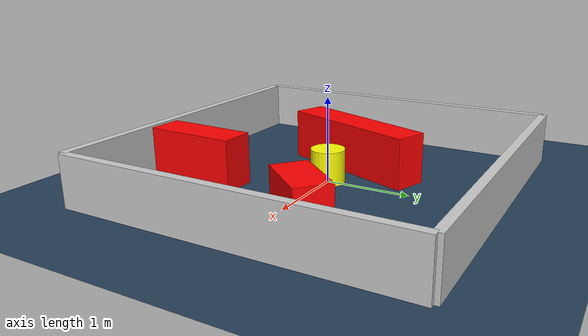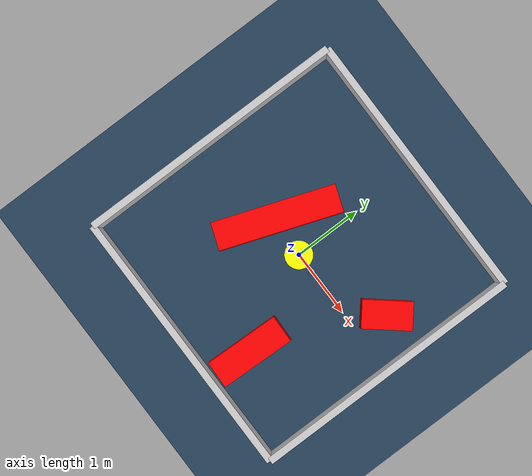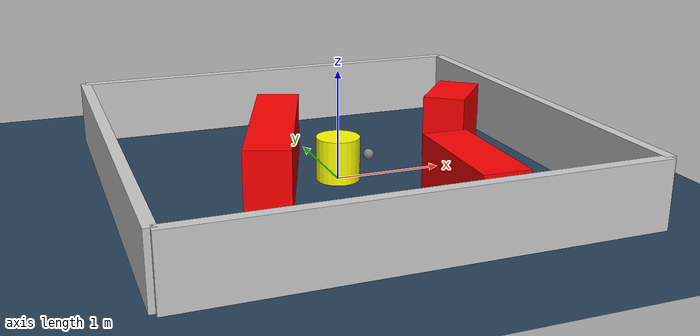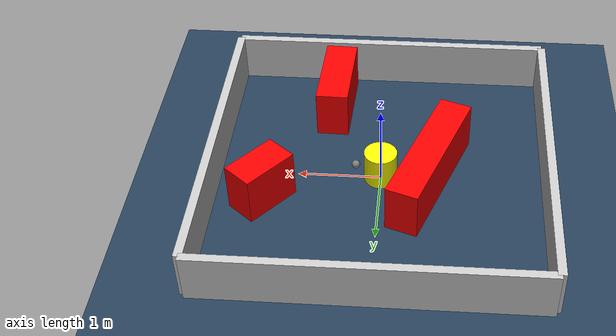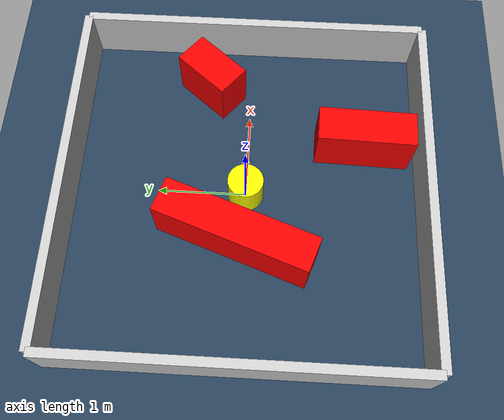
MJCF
<?xml version="1.0" ?>
<mujoco model="generated_environment">
  <option timestep="0.01" integrator="RK4" cone="elliptic"/>
  <default>
    <geom density="1"/>
  </default>
  <asset>
    <texture builtin="gradient" height="3072" rgb1="0.3 0.5 0.7" rgb2="0 0 0" type="skybox" width="512"/>
    <texture builtin="checker" height="300" mark="edge" markrgb="0.8 0.8 0.8" name="groundplane" rgb1="0.2 0.3 0.4" rgb2="0.1 0.2 0.3" type="2d" width="300"/>
    <material name="groundplane" reflectance="0.2" texrepeat="5 5" texture="groundplane" texuniform="true"/>
    <material name="robot" rgba="0.0 1.0 0.0 1"/>
  </asset>
  <worldbody>
    <light dir="0 0 -1" directional="true" pos="0 0 1.5"/>
    <geom condim="4" friction="1.0 0.005 0.001" material="groundplane" name="floor" size="0 0 0.05" type="plane"/>
    <body name="walls">
      <geom name="wall_1" condim="4" pos="-2.0 0.0 0.3" rgba="0.800000011920929 0.800000011920929 0.800000011920929 1.0" size="0.05 2.0 0.3" type="box"/>
      <geom name="wall_2" condim="4" pos="2.0 0.0 0.3" rgba="0.800000011920929 0.800000011920929 0.800000011920929 1.0" size="0.05 2.0 0.3" type="box"/>
      <geom name="wall_3" condim="4" pos="0.0 -2.0 0.3" rgba="0.800000011920929 0.800000011920929 0.800000011920929 1.0" size="2.0 0.05 0.3" type="box"/>
      <geom name="wall_4" condim="4" pos="0.0 2.0 0.3" rgba="0.800000011920929 0.800000011920929 0.800000011920929 1.0" size="2.0 0.05 0.3" type="box"/>
    </body>
    <body name="robot">
      <joint name="joint_x" type="slide" pos="0 0 0" axis="1 0 0"/>
      <joint name="joint_y" type="slide" pos="0 0 0" axis="0 1 0"/>
      <geom name="robot" type="sphere" pos="0.3 0.0 0.2" size="0.05" mass="5." friction="1.0 0.005 0.0001" condim="4" rgba="0.5 0.5 0.5 1.0"/>
      <site name="sensor_ball"/>
    </body>
    <body name="obstacle_movable_1">
      <geom name="obstacle_movable_1" condim="4" pos="0.0 0.0 0.2" euler="0 0 0.0" friction="1.0 0.005 0.001" rgba="1.0 1.0 0.0 1.0" size="0.2 0.2 0.0" type="cylinder" mass="0.1"/>
      <joint type="free"/>
    </body>
    <body name="obstacle_2_static">
      <geom name="obstacle_2_static" condim="4" pos="-0.5860085214090244 0.07349201563744967 0.3" euler="0 0 70.28224679750763" friction="1.0 0.005 0.001" rgba="1 0 0 1" size="0.8886211661283718 0.2 0.3" type="box"/>
    </body>
    <body name="obstacle_3_static">
      <geom name="obstacle_3_static" condim="4" pos="1.3792195465399661 0.46565619277482084 0.3" euler="0 0 230.1966458581853" friction="1.0 0.005 0.001" rgba="1 0 0 1" size="0.3513660591851281 0.2 0.3" type="box"/>
    </body>
    <body name="obstacle_4_static">
      <geom name="obstacle_4_static" condim="4" pos="0.6478736122721145 -1.3306447292161492 0.3" euler="0 0 88.19624612399323" friction="1.0 0.005 0.001" rgba="1 0 0 1" size="0.5459046751661414 0.2 0.3" type="box"/>
    </body>
  </worldbody>
  <actuator>
    <motor name="actuator_x" joint="joint_x" gear="1" ctrlrange="-1 1"/>
    <motor name="actuator_y" joint="joint_y" gear="1" ctrlrange="-1 1"/>
  </actuator>
</mujoco>
